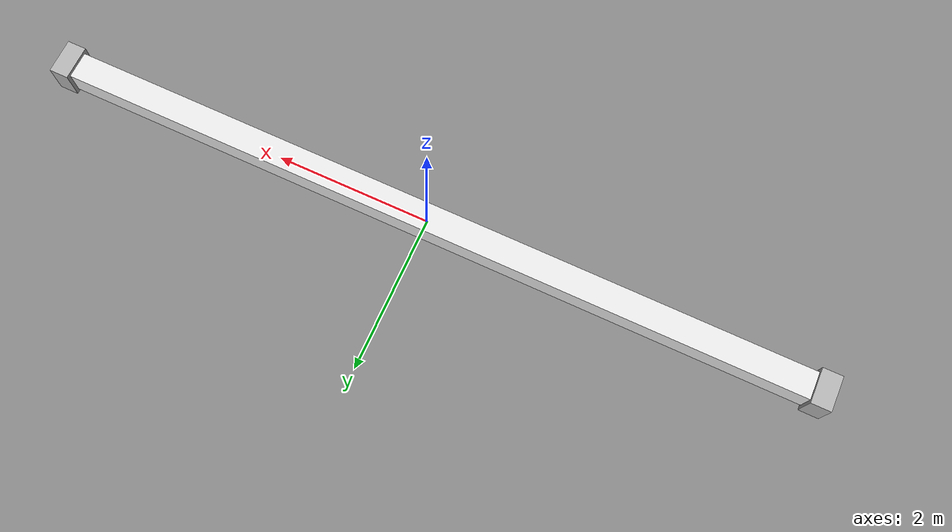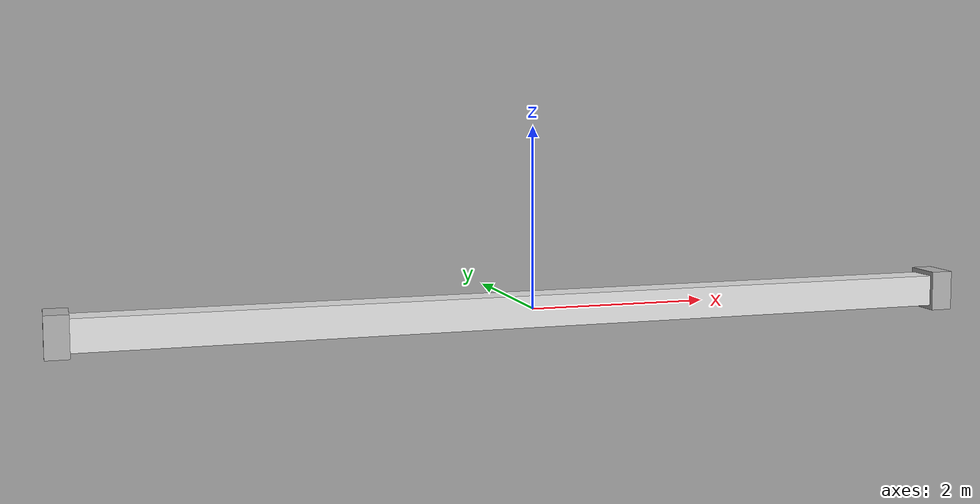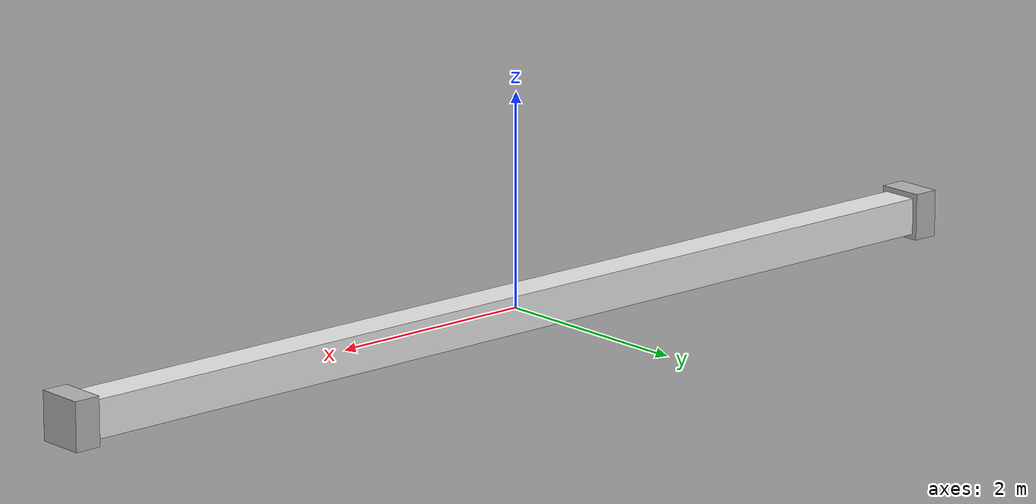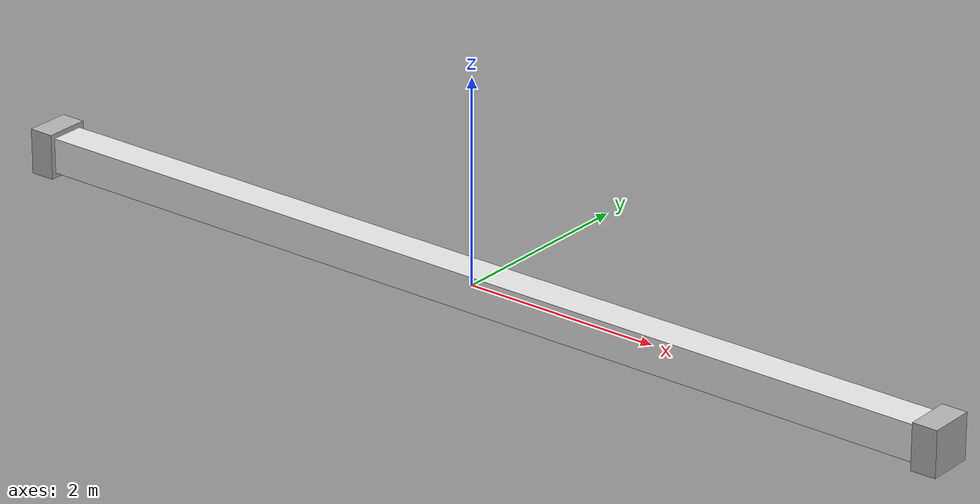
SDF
<?xml version="1.0"?>

<sdf version="1.10">

<model name="busbar">

  <static>true</static>

  <link name="link">

    <!-- MAIN BUSBAR -->

    <visual name="busbar_main">

      <geometry>
        <box>
          <size>10 0.35 0.35</size>
        </box>
      </geometry>

      <material>
        <ambient>0.85 0.85 0.85 1</ambient>
        <diffuse>0.90 0.90 0.90 1</diffuse>
        <specular>1.0 1.0 1.0 1</specular>
      </material>

    </visual>

    <!-- LEFT CLAMP -->

    <visual name="left_clamp">

      <pose>-5 0 0 0 0 0</pose>

      <geometry>
        <box>
          <size>0.25 0.45 0.45</size>
        </box>
      </geometry>

      <material>
        <ambient>0.6 0.6 0.6 1</ambient>
        <diffuse>0.7 0.7 0.7 1</diffuse>
      </material>

    </visual>

    <!-- RIGHT CLAMP -->

    <visual name="right_clamp">

      <pose>5 0 0 0 0 0</pose>

      <geometry>
        <box>
          <size>0.25 0.45 0.45</size>
        </box>
      </geometry>

      <material>
        <ambient>0.6 0.6 0.6 1</ambient>
        <diffuse>0.7 0.7 0.7 1</diffuse>
      </material>

    </visual>

    <!-- COLLISION -->

    <collision name="collision">

      <geometry>
        <box>
          <size>10 0.35 0.35</size>
        </box>
      </geometry>

    </collision>

  </link>

</model>

</sdf>
